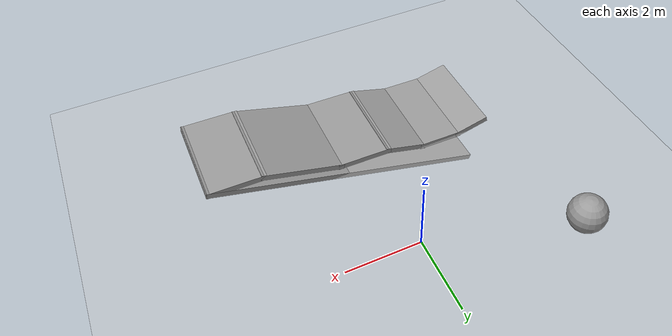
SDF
<sdf version="1.6">
 <world name="default">
  <light name="sun" type="directional">
   <pose>0 0 10 0 -0 0</pose>
   <diffuse>0.8 0.8 0.8 1</diffuse>
   <specular>0.2 0.2 0.2 1</specular>
   <attenuation>
    <range>1000</range>
    <constant>0.9</constant>
    <linear>0.01</linear>
    <quadratic>0.001</quadratic>
   </attenuation>
   <direction>-0.5 0.1 -0.9</direction>
  </light>
  <model name="ground_plane">
   <static>1</static>
   <link name="link">
    <collision name="collision">
     <geometry><plane><normal>0 0 1</normal><size>100 100</size></plane></geometry>
     <surface>
      <contact><collide_bitmask>65535</collide_bitmask></contact>
      <friction><ode><mu>100</mu><mu2>50</mu2></ode></friction>
     </surface>
    </collision>
    <visual name="visual">
     <cast_shadows>0</cast_shadows>
     <geometry><plane><normal>0 0 1</normal><size>100 100</size></plane></geometry>
     <material>
      <script><uri>file://media/materials/scripts/gazebo.material</uri><name>Gazebo/Grey</name></script>
     </material>
    </visual>
   </link>
  </model>
  <gravity>0 0 -9.8</gravity>
  <magnetic_field>6e-06 2.3e-05 -4.2e-05</magnetic_field>
  <atmosphere type="adiabatic"/>
  <physics name="default_physics" default="0" type="ode">
   <max_step_size>0.001</max_step_size>
   <real_time_factor>1</real_time_factor>
   <real_time_update_rate>1000</real_time_update_rate>
  </physics>
  <scene><ambient>0.4 0.4 0.4 1</ambient><background>0.7 0.7 0.7 1</background><shadows>1</shadows></scene>
  <audio><device>default</device></audio>
  <spherical_coordinates>
   <surface_model>EARTH_WGS84</surface_model>
   <latitude_deg>0</latitude_deg>
   <longitude_deg>0</longitude_deg>
   <elevation>0</elevation>
   <heading_deg>0</heading_deg>
  </spherical_coordinates>
  <model name="unit_sphere">
   <pose>-3.83332 1.28046 0.5 0 -0 0</pose>
   <link name="link">
    <inertial>
     <mass>1</mass>
     <inertia><ixx>0.1</ixx><ixy>0</ixy><ixz>0</ixz><iyy>0.1</iyy><iyz>0</iyz><izz>0.1</izz></inertia>
    </inertial>
    <collision name="collision"><geometry><sphere><radius>0.5</radius></sphere></geometry></collision>
    <visual name="visual">
     <geometry><sphere><radius>0.5</radius></sphere></geometry>
     <material>
      <script><name>Gazebo/Grey</name><uri>file://media/materials/scripts/gazebo.material</uri></script>
     </material>
    </visual>
   </link>
  </model>
  <model name="dekoboko">
   <pose>0.425769 -2.77373 -0.115694 1.57321 -0.024005 0.003297</pose>
   <link name="Wall_0">
    <collision name="Wall_0_Collision">
     <geometry><box><size>1 0.15 2.5</size></box></geometry>
     <pose>0 0 1.25 0 -0 0</pose>
    </collision>
    <visual name="Wall_0_Visual">
     <pose>0 0 1.25 0 -0 0</pose>
     <geometry><box><size>1 0.15 2.5</size></box></geometry>
     <material>
      <script><uri>file://media/materials/scripts/gazebo.material</uri><name>Gazebo/Grey</name></script>
      <ambient>1 1 1 1</ambient>
     </material>
     <meta><layer>0</layer></meta>
    </visual>
    <pose>-3.44548 0.26529 0 0 -0 -0.261799</pose>
   </link>
   <link name="Wall_1">
    <collision name="Wall_1_Collision">
     <geometry><box><size>1.25 0.15 2.5</size></box></geometry>
     <pose>0 0 1.25 0 -0 0</pose>
    </collision>
    <visual name="Wall_1_Visual">
     <pose>0 0 1.25 0 -0 0</pose>
     <geometry><box><size>1.25 0.15 2.5</size></box></geometry>
     <material>
      <script><uri>file://media/materials/scripts/gazebo.material</uri><name>Gazebo/Grey</name></script>
      <ambient>1 1 1 1</ambient>
     </material>
     <meta><layer>0</layer></meta>
    </visual>
    <pose>-2.48496 0.155292 0 0 -0 0</pose>
   </link>
   <link name="Wall_2">
    <collision name="Wall_2_Collision">
     <geometry><box><size>1.25 0.15 2.5</size></box></geometry>
     <pose>0 0 1.25 0 -0 0</pose>
    </collision>
    <visual name="Wall_2_Visual">
     <pose>0 0 1.25 0 -0 0</pose>
     <geometry><box><size>1.25 0.15 2.5</size></box></geometry>
     <material>
      <script><uri>file://media/materials/scripts/gazebo.material</uri><name>Gazebo/Grey</name></script>
      <ambient>1 1 1 1</ambient>
     </material>
     <meta><layer>0</layer></meta>
    </visual>
    <pose>-1.4037 0.297642 0 0 -0 0.261799</pose>
   </link>
   <link name="Wall_3">
    <collision name="Wall_3_Collision">
     <geometry><box><size>1.5 0.15 2.5</size></box></geometry>
     <pose>0 0 1.25 0 -0 0</pose>
    </collision>
    <visual name="Wall_3_Visual">
     <pose>0 0 1.25 0 -0 0</pose>
     <geometry><box><size>1.5 0.15 2.5</size></box></geometry>
     <material>
      <script><uri>file://media/materials/scripts/gazebo.material</uri><name>Gazebo/Grey</name></script>
      <ambient>1 1 1 1</ambient>
     </material>
     <meta><layer>0</layer></meta>
    </visual>
    <pose>-0.197445 0.439993 0 0 -0 0</pose>
   </link>
   <link name="Wall_4">
    <collision name="Wall_4_Collision">
     <geometry><box><size>2.25 0.15 2.5</size></box></geometry>
     <pose>0 0 1.25 0 -0 0</pose>
    </collision>
    <visual name="Wall_4_Visual">
     <pose>0 0 1.25 0 -0 0</pose>
     <geometry><box><size>2.25 0.15 2.5</size></box></geometry>
     <material>
      <script><uri>file://media/materials/scripts/gazebo.material</uri><name>Gazebo/Grey</name></script>
      <ambient>1 1 1 1</ambient>
     </material>
     <meta><layer>0</layer></meta>
    </visual>
    <pose>1.49178 0.711753 0 0 -0 0.261799</pose>
   </link>
   <link name="Wall_5">
    <collision name="Wall_5_Collision">
     <geometry><box><size>1.5 0.15 2.5</size></box></geometry>
     <pose>0 0 1.25 0 -0 0</pose>
    </collision>
    <visual name="Wall_5_Visual">
     <pose>0 0 1.25 0 -0 0</pose>
     <geometry><box><size>1.5 0.15 2.5</size></box></geometry>
     <material>
      <script><uri>file://media/materials/scripts/gazebo.material</uri><name>Gazebo/Grey</name></script>
      <ambient>1 1 1 1</ambient>
     </material>
     <meta><layer>0</layer></meta>
    </visual>
    <pose>3.181 0.983513 0 0 -0 0</pose>
   </link>
   <link name="Wall_6">
    <collision name="Wall_6_Collision">
     <geometry><box><size>7.75 0.15 2.5</size></box></geometry>
     <pose>0 0 1.25 0 -0 0</pose>
    </collision>
    <visual name="Wall_6_Visual">
     <pose>0 0 1.25 0 -0 0</pose>
     <geometry><box><size>7.75 0.15 2.5</size></box></geometry>
     <material>
      <script><uri>file://media/materials/scripts/gazebo.material</uri><name>Gazebo/Grey</name></script>
      <ambient>0 0 0 1</ambient>
     </material>
     <meta><layer>0</layer></meta>
    </visual>
    <pose>0.185481 0 0 0 -0 -2.87979</pose>
   </link>
   <static>1</static>
  </model>
 </world>
</sdf>
